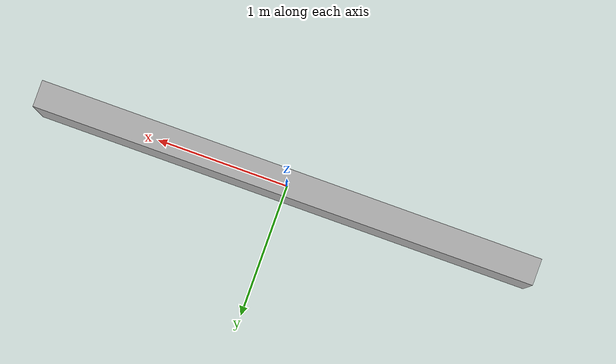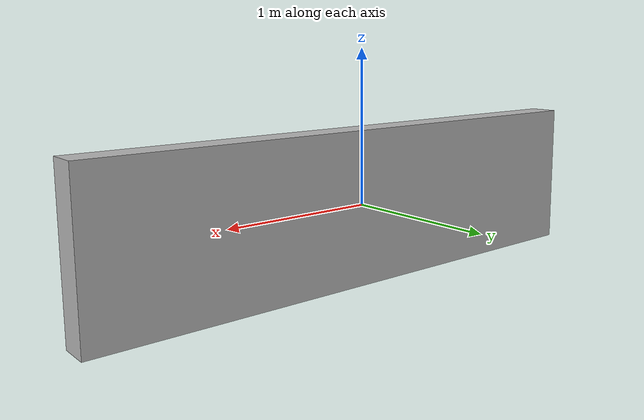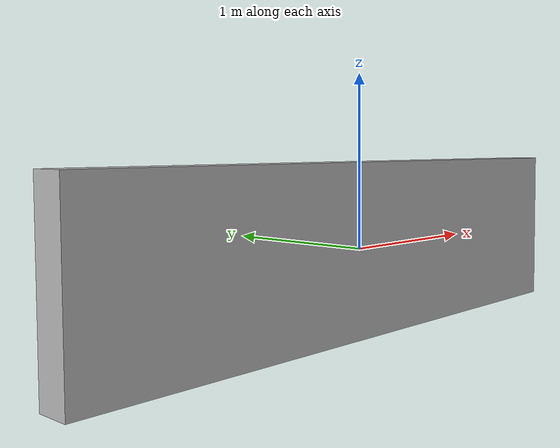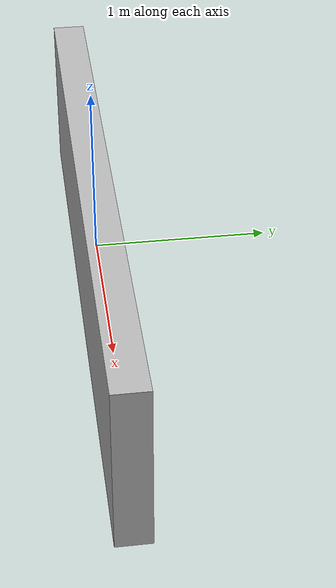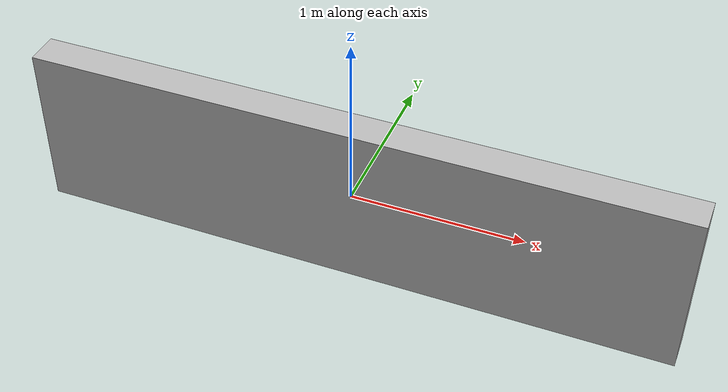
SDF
<?xml version='1.0'?>
<sdf version='1.6'>
  <model name='room_3_wall_bottom'>
    <static>true</static>
    <link name='link'>
      <collision name='collision'>
        <pose>0 0 0 0 0 0</pose>
        <geometry>
          <box>
            <size>3.8 0.2 1.0</size>
          </box>
        </geometry>
      </collision>
      <visual name='visual'>
        <pose>0 0 0 0 0 0</pose>
        <geometry>
          <box>
            <size>3.8 0.2 1.0</size>
          </box>
        </geometry>
      </visual>
    </link>
  </model>
</sdf>
